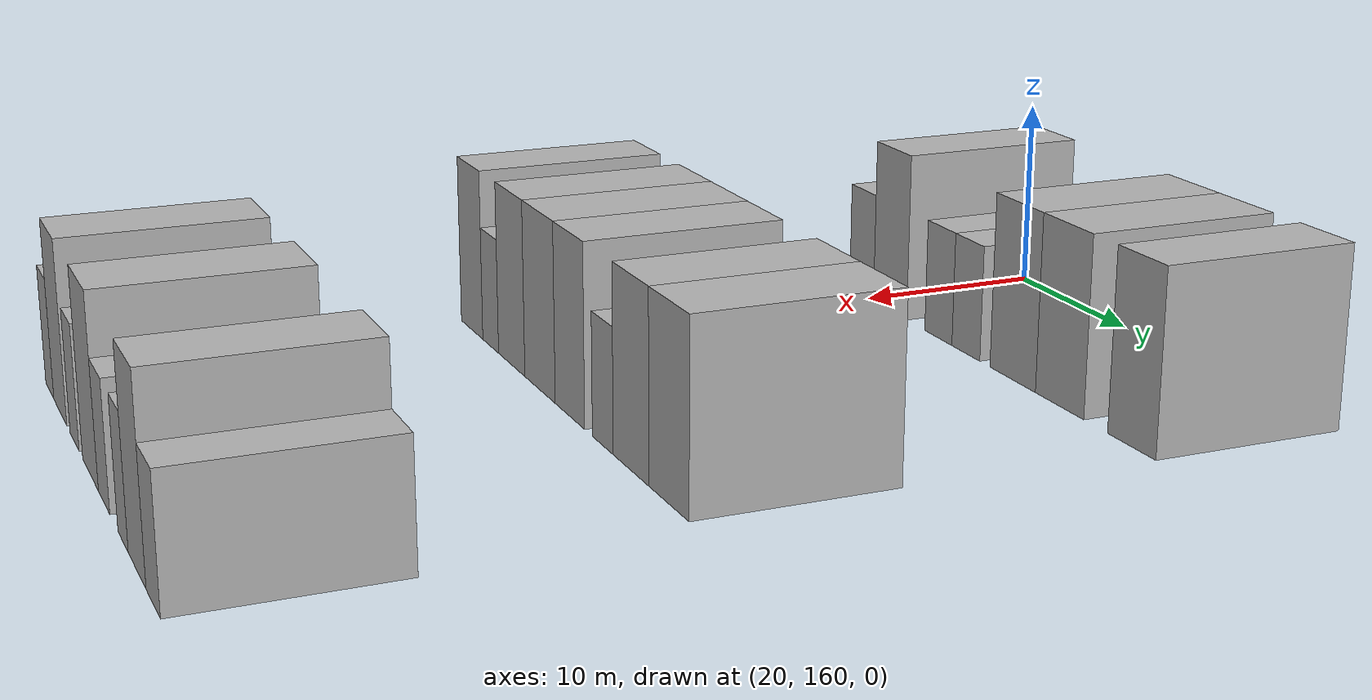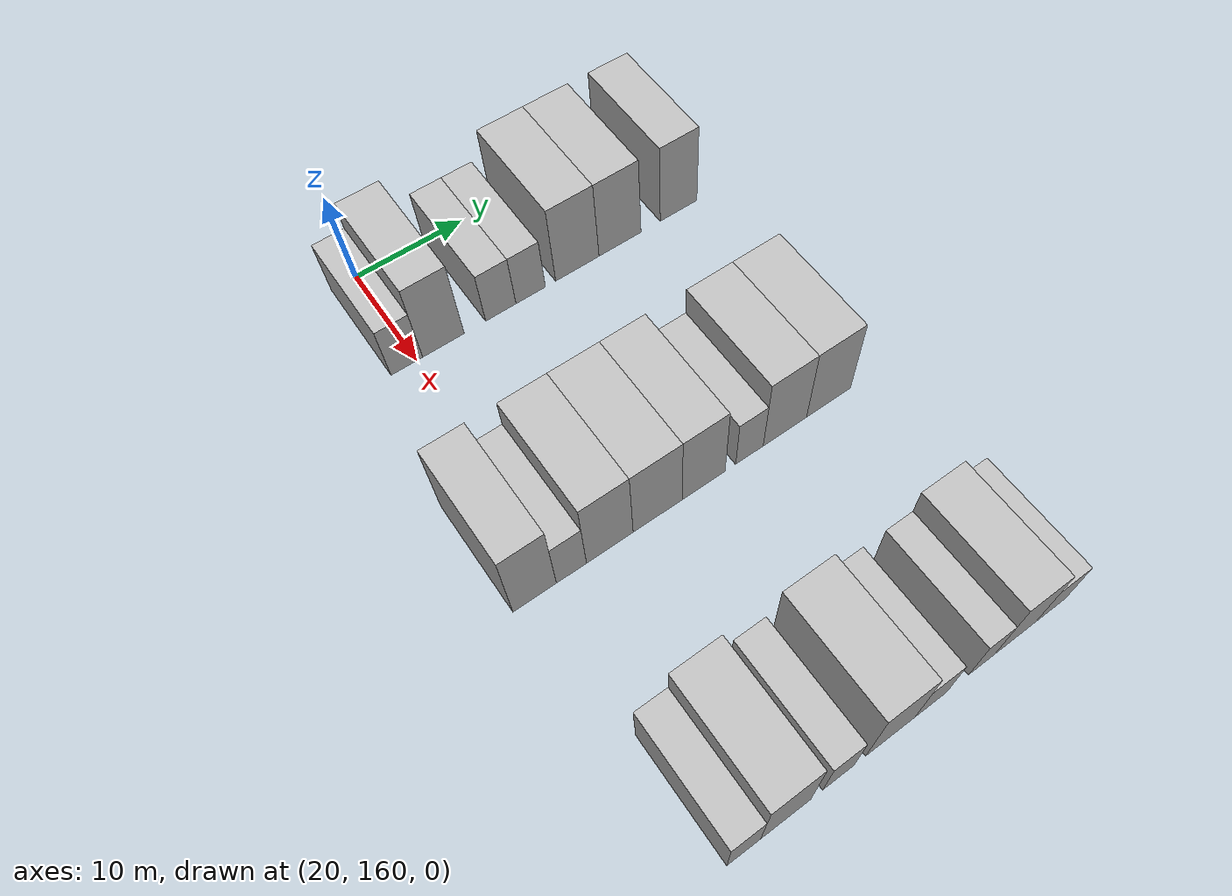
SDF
<sdf version="1.6">
 <world name="default">
  <model name="building_102">
   <static>1</static>
   <pose>25.0000 159.1269 0 0.000000 0.000000 0.000000</pose>
   <link name="link">
    <pose>0 0 3.00 0 0 0</pose>
    <collision name="collision"><geometry><box><size>10.0000 2.8499 6.0000</size></box></geometry></collision>
    <visual name="visual">
     <cast_shadows>0</cast_shadows>
     <geometry><box><size>10.0000 2.8499 6.0000</size></box></geometry>
     <material>
      <script>
       <uri>model://HANNAS_wall/materials/scripts</uri>
       <uri>model://HANNAS_wall/materials/textures</uri>
       <name>vrc/HANNAS_wall</name>
      </script>
     </material>
    </visual>
   </link>
  </model>
  <model name="building_103">
   <static>1</static>
   <pose>25.0000 162.4542 0 0.000000 0.000000 0.000000</pose>
   <link name="link">
    <pose>0 0 4.50 0 0 0</pose>
    <collision name="collision"><geometry><box><size>10.0000 3.8047 9.0000</size></box></geometry></collision>
    <visual name="visual">
     <cast_shadows>0</cast_shadows>
     <geometry><box><size>10.0000 3.8047 9.0000</size></box></geometry>
     <material>
      <script>
       <uri>model://HANNAS_wall/materials/scripts</uri>
       <uri>model://HANNAS_wall/materials/textures</uri>
       <name>vrc/HANNAS_wall</name>
      </script>
     </material>
    </visual>
   </link>
  </model>
  <model name="building_104">
   <static>1</static>
   <pose>25.0000 167.7966 0 0.000000 0.000000 0.000000</pose>
   <link name="link">
    <pose>0 0 3.00 0 0 0</pose>
    <collision name="collision"><geometry><box><size>10.0000 2.8801 6.0000</size></box></geometry></collision>
    <visual name="visual">
     <cast_shadows>0</cast_shadows>
     <geometry><box><size>10.0000 2.8801 6.0000</size></box></geometry>
     <material>
      <script>
       <uri>model://HANNAS_wall/materials/scripts</uri>
       <uri>model://HANNAS_wall/materials/textures</uri>
       <name>vrc/HANNAS_wall</name>
      </script>
     </material>
    </visual>
   </link>
  </model>
  <model name="building_105">
   <static>1</static>
   <pose>25.0000 170.6567 0 0.000000 0.000000 0.000000</pose>
   <link name="link">
    <pose>0 0 3.00 0 0 0</pose>
    <collision name="collision"><geometry><box><size>10.0000 2.8402 6.0000</size></box></geometry></collision>
    <visual name="visual">
     <cast_shadows>0</cast_shadows>
     <geometry><box><size>10.0000 2.8402 6.0000</size></box></geometry>
     <material>
      <script>
       <uri>model://HANNAS_wall/materials/scripts</uri>
       <uri>model://HANNAS_wall/materials/textures</uri>
       <name>vrc/HANNAS_wall</name>
      </script>
     </material>
    </visual>
   </link>
  </model>
  <model name="building_106">
   <static>1</static>
   <pose>25.0000 175.2298 0 0.000000 0.000000 0.000000</pose>
   <link name="link">
    <pose>0 0 4.50 0 0 0</pose>
    <collision name="collision"><geometry><box><size>10.0000 4.3061 9.0000</size></box></geometry></collision>
    <visual name="visual">
     <cast_shadows>0</cast_shadows>
     <geometry><box><size>10.0000 4.3061 9.0000</size></box></geometry>
     <material>
      <script>
       <uri>model://HANNAS_wall/materials/scripts</uri>
       <uri>model://HANNAS_wall/materials/textures</uri>
       <name>vrc/HANNAS_wall</name>
      </script>
     </material>
    </visual>
   </link>
  </model>
  <model name="building_107">
   <static>1</static>
   <pose>25.0000 179.5219 0 0.000000 0.000000 0.000000</pose>
   <link name="link">
    <pose>0 0 4.50 0 0 0</pose>
    <collision name="collision"><geometry><box><size>10.0000 4.2780 9.0000</size></box></geometry></collision>
    <visual name="visual">
     <cast_shadows>0</cast_shadows>
     <geometry><box><size>10.0000 4.2780 9.0000</size></box></geometry>
     <material>
      <script>
       <uri>model://HANNAS_wall/materials/scripts</uri>
       <uri>model://HANNAS_wall/materials/textures</uri>
       <name>vrc/HANNAS_wall</name>
      </script>
     </material>
    </visual>
   </link>
  </model>
  <model name="building_108">
   <static>1</static>
   <pose>25.0000 185.5893 0 0.000000 0.000000 0.000000</pose>
   <link name="link">
    <pose>0 0 4.50 0 0 0</pose>
    <collision name="collision"><geometry><box><size>10.0000 3.8569 9.0000</size></box></geometry></collision>
    <visual name="visual">
     <cast_shadows>0</cast_shadows>
     <geometry><box><size>10.0000 3.8569 9.0000</size></box></geometry>
     <material>
      <script>
       <uri>model://HANNAS_wall/materials/scripts</uri>
       <uri>model://HANNAS_wall/materials/textures</uri>
       <name>vrc/HANNAS_wall</name>
      </script>
     </material>
    </visual>
   </link>
  </model>
  <model name="building_222">
   <static>1</static>
   <pose>47.0000 157.0173 0 0.000000 0.000000 0.000000</pose>
   <link name="link">
    <pose>0 0 4.50 0 0 0</pose>
    <collision name="collision"><geometry><box><size>10.0000 3.6408 9.0000</size></box></geometry></collision>
    <visual name="visual">
     <cast_shadows>0</cast_shadows>
     <geometry><box><size>10.0000 3.6408 9.0000</size></box></geometry>
     <material>
      <script>
       <uri>model://HANNAS_wall/materials/scripts</uri>
       <uri>model://HANNAS_wall/materials/textures</uri>
       <name>vrc/HANNAS_wall</name>
      </script>
     </material>
    </visual>
   </link>
  </model>
  <model name="building_223">
   <static>1</static>
   <pose>47.0000 160.1199 0 0.000000 0.000000 0.000000</pose>
   <link name="link">
    <pose>0 0 3.00 0 0 0</pose>
    <collision name="collision"><geometry><box><size>10.0000 2.5644 6.0000</size></box></geometry></collision>
    <visual name="visual">
     <cast_shadows>0</cast_shadows>
     <geometry><box><size>10.0000 2.5644 6.0000</size></box></geometry>
     <material>
      <script>
       <uri>model://HANNAS_wall/materials/scripts</uri>
       <uri>model://HANNAS_wall/materials/textures</uri>
       <name>vrc/HANNAS_wall</name>
      </script>
     </material>
    </visual>
   </link>
  </model>
  <model name="building_224">
   <static>1</static>
   <pose>47.0000 163.4397 0 0.000000 0.000000 0.000000</pose>
   <link name="link">
    <pose>0 0 4.50 0 0 0</pose>
    <collision name="collision"><geometry><box><size>10.0000 4.0753 9.0000</size></box></geometry></collision>
    <visual name="visual">
     <cast_shadows>0</cast_shadows>
     <geometry><box><size>10.0000 4.0753 9.0000</size></box></geometry>
     <material>
      <script>
       <uri>model://HANNAS_wall/materials/scripts</uri>
       <uri>model://HANNAS_wall/materials/textures</uri>
       <name>vrc/HANNAS_wall</name>
      </script>
     </material>
    </visual>
   </link>
  </model>
  <model name="building_225">
   <static>1</static>
   <pose>47.0000 167.6775 0 0.000000 0.000000 0.000000</pose>
   <link name="link">
    <pose>0 0 4.50 0 0 0</pose>
    <collision name="collision"><geometry><box><size>10.0000 4.4003 9.0000</size></box></geometry></collision>
    <visual name="visual">
     <cast_shadows>0</cast_shadows>
     <geometry><box><size>10.0000 4.4003 9.0000</size></box></geometry>
     <material>
      <script>
       <uri>model://HANNAS_wall/materials/scripts</uri>
       <uri>model://HANNAS_wall/materials/textures</uri>
       <name>vrc/HANNAS_wall</name>
      </script>
     </material>
    </visual>
   </link>
  </model>
  <model name="building_226">
   <static>1</static>
   <pose>47.0000 171.8676 0 0.000000 0.000000 0.000000</pose>
   <link name="link">
    <pose>0 0 4.50 0 0 0</pose>
    <collision name="collision"><geometry><box><size>10.0000 3.9800 9.0000</size></box></geometry></collision>
    <visual name="visual">
     <cast_shadows>0</cast_shadows>
     <geometry><box><size>10.0000 3.9800 9.0000</size></box></geometry>
     <material>
      <script>
       <uri>model://HANNAS_wall/materials/scripts</uri>
       <uri>model://HANNAS_wall/materials/textures</uri>
       <name>vrc/HANNAS_wall</name>
      </script>
     </material>
    </visual>
   </link>
  </model>
  <model name="building_227">
   <static>1</static>
   <pose>47.0000 176.1687 0 0.000000 0.000000 0.000000</pose>
   <link name="link">
    <pose>0 0 3.00 0 0 0</pose>
    <collision name="collision"><geometry><box><size>10.0000 2.6221 6.0000</size></box></geometry></collision>
    <visual name="visual">
     <cast_shadows>0</cast_shadows>
     <geometry><box><size>10.0000 2.6221 6.0000</size></box></geometry>
     <material>
      <script>
       <uri>model://HANNAS_wall/materials/scripts</uri>
       <uri>model://HANNAS_wall/materials/textures</uri>
       <name>vrc/HANNAS_wall</name>
      </script>
     </material>
    </visual>
   </link>
  </model>
  <model name="building_228">
   <static>1</static>
   <pose>47.0000 179.5935 0 0.000000 0.000000 0.000000</pose>
   <link name="link">
    <pose>0 0 4.50 0 0 0</pose>
    <collision name="collision"><geometry><box><size>10.0000 4.2276 9.0000</size></box></geometry></collision>
    <visual name="visual">
     <cast_shadows>0</cast_shadows>
     <geometry><box><size>10.0000 4.2276 9.0000</size></box></geometry>
     <material>
      <script>
       <uri>model://HANNAS_wall/materials/scripts</uri>
       <uri>model://HANNAS_wall/materials/textures</uri>
       <name>vrc/HANNAS_wall</name>
      </script>
     </material>
    </visual>
   </link>
  </model>
  <model name="building_229">
   <static>1</static>
   <pose>47.0000 183.9075 0 0.000000 0.000000 0.000000</pose>
   <link name="link">
    <pose>0 0 4.50 0 0 0</pose>
    <collision name="collision"><geometry><box><size>10.0000 4.4002 9.0000</size></box></geometry></collision>
    <visual name="visual">
     <cast_shadows>0</cast_shadows>
     <geometry><box><size>10.0000 4.4002 9.0000</size></box></geometry>
     <material>
      <script>
       <uri>model://HANNAS_wall/materials/scripts</uri>
       <uri>model://HANNAS_wall/materials/textures</uri>
       <name>vrc/HANNAS_wall</name>
      </script>
     </material>
    </visual>
   </link>
  </model>
  <model name="building_347">
   <static>1</static>
   <pose>69.0000 158.6338 0 0.000000 0.000000 0.000000</pose>
   <link name="link">
    <pose>0 0 3.00 0 0 0</pose>
    <collision name="collision"><geometry><box><size>10.0000 2.6839 6.0000</size></box></geometry></collision>
    <visual name="visual">
     <cast_shadows>0</cast_shadows>
     <geometry><box><size>10.0000 2.6839 6.0000</size></box></geometry>
     <material>
      <script>
       <uri>model://HANNAS_wall/materials/scripts</uri>
       <uri>model://HANNAS_wall/materials/textures</uri>
       <name>vrc/HANNAS_wall</name>
      </script>
     </material>
    </visual>
   </link>
  </model>
  <model name="building_348">
   <static>1</static>
   <pose>69.0000 162.0412 0 0.000000 0.000000 0.000000</pose>
   <link name="link">
    <pose>0 0 4.50 0 0 0</pose>
    <collision name="collision"><geometry><box><size>10.0000 4.1308 9.0000</size></box></geometry></collision>
    <visual name="visual">
     <cast_shadows>0</cast_shadows>
     <geometry><box><size>10.0000 4.1308 9.0000</size></box></geometry>
     <material>
      <script>
       <uri>model://HANNAS_wall/materials/scripts</uri>
       <uri>model://HANNAS_wall/materials/textures</uri>
       <name>vrc/HANNAS_wall</name>
      </script>
     </material>
    </visual>
   </link>
  </model>
  <model name="building_349">
   <static>1</static>
   <pose>69.0000 166.4424 0 0.000000 0.000000 0.000000</pose>
   <link name="link">
    <pose>0 0 3.00 0 0 0</pose>
    <collision name="collision"><geometry><box><size>10.0000 2.6717 6.0000</size></box></geometry></collision>
    <visual name="visual">
     <cast_shadows>0</cast_shadows>
     <geometry><box><size>10.0000 2.6717 6.0000</size></box></geometry>
     <material>
      <script>
       <uri>model://HANNAS_wall/materials/scripts</uri>
       <uri>model://HANNAS_wall/materials/textures</uri>
       <name>vrc/HANNAS_wall</name>
      </script>
     </material>
    </visual>
   </link>
  </model>
  <model name="building_350">
   <static>1</static>
   <pose>69.0000 170.9402 0 0.000000 0.000000 0.000000</pose>
   <link name="link">
    <pose>0 0 4.50 0 0 0</pose>
    <collision name="collision"><geometry><box><size>10.0000 4.3239 9.0000</size></box></geometry></collision>
    <visual name="visual">
     <cast_shadows>0</cast_shadows>
     <geometry><box><size>10.0000 4.3239 9.0000</size></box></geometry>
     <material>
      <script>
       <uri>model://HANNAS_wall/materials/scripts</uri>
       <uri>model://HANNAS_wall/materials/textures</uri>
       <name>vrc/HANNAS_wall</name>
      </script>
     </material>
    </visual>
   </link>
  </model>
  <model name="building_351">
   <static>1</static>
   <pose>69.0000 174.5482 0 0.000000 0.000000 0.000000</pose>
   <link name="link">
    <pose>0 0 3.00 0 0 0</pose>
    <collision name="collision"><geometry><box><size>10.0000 2.8920 6.0000</size></box></geometry></collision>
    <visual name="visual">
     <cast_shadows>0</cast_shadows>
     <geometry><box><size>10.0000 2.8920 6.0000</size></box></geometry>
     <material>
      <script>
       <uri>model://HANNAS_wall/materials/scripts</uri>
       <uri>model://HANNAS_wall/materials/textures</uri>
       <name>vrc/HANNAS_wall</name>
      </script>
     </material>
    </visual>
   </link>
  </model>
  <model name="building_352">
   <static>1</static>
   <pose>69.0000 179.2008 0 0.000000 0.000000 0.000000</pose>
   <link name="link">
    <pose>0 0 3.00 0 0 0</pose>
    <collision name="collision"><geometry><box><size>10.0000 2.4133 6.0000</size></box></geometry></collision>
    <visual name="visual">
     <cast_shadows>0</cast_shadows>
     <geometry><box><size>10.0000 2.4133 6.0000</size></box></geometry>
     <material>
      <script>
       <uri>model://HANNAS_wall/materials/scripts</uri>
       <uri>model://HANNAS_wall/materials/textures</uri>
       <name>vrc/HANNAS_wall</name>
      </script>
     </material>
    </visual>
   </link>
  </model>
  <model name="building_353">
   <static>1</static>
   <pose>69.0000 182.3709 0 0.000000 0.000000 0.000000</pose>
   <link name="link">
    <pose>0 0 4.50 0 0 0</pose>
    <collision name="collision"><geometry><box><size>10.0000 3.9270 9.0000</size></box></geometry></collision>
    <visual name="visual">
     <cast_shadows>0</cast_shadows>
     <geometry><box><size>10.0000 3.9270 9.0000</size></box></geometry>
     <material>
      <script>
       <uri>model://HANNAS_wall/materials/scripts</uri>
       <uri>model://HANNAS_wall/materials/textures</uri>
       <name>vrc/HANNAS_wall</name>
      </script>
     </material>
    </visual>
   </link>
  </model>
  <model name="building_354">
   <static>1</static>
   <pose>69.0000 185.8108 0 0.000000 0.000000 0.000000</pose>
   <link name="link">
    <pose>0 0 3.00 0 0 0</pose>
    <collision name="collision"><geometry><box><size>10.0000 2.9527 6.0000</size></box></geometry></collision>
    <visual name="visual">
     <cast_shadows>0</cast_shadows>
     <geometry><box><size>10.0000 2.9527 6.0000</size></box></geometry>
     <material>
      <script>
       <uri>model://HANNAS_wall/materials/scripts</uri>
       <uri>model://HANNAS_wall/materials/textures</uri>
       <name>vrc/HANNAS_wall</name>
      </script>
     </material>
    </visual>
   </link>
  </model>
 </world>
</sdf>
